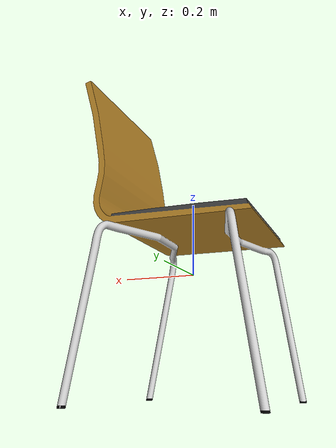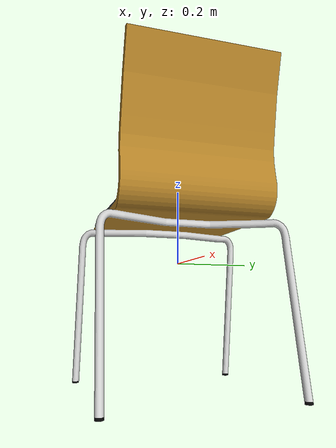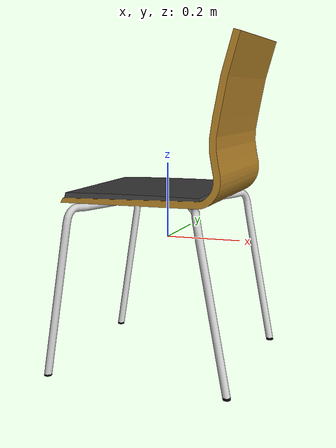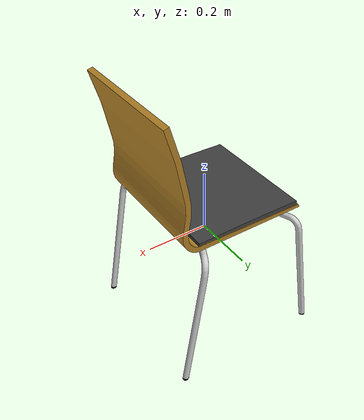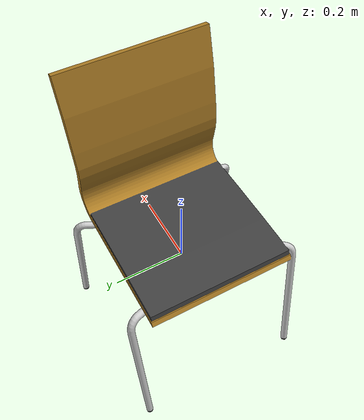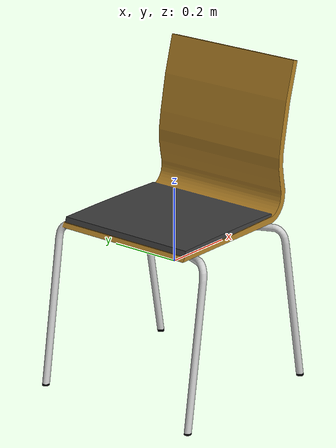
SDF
<?xml version='1.0'?>
<sdf version='1.5'>
    <model name="413_simple_chair">
        <pose>0 0 0 0 0 0</pose>
        <static>false</static>
        <link name='model_body'>
            <visual name="visual">
                <geometry>
                    <mesh>
                        <uri>model://rs_gazebo/meshes/ss_hq4/413_simple_chair/413_simple_chair_visual.dae</uri>
                        <scale>1 1 1</scale>
                    </mesh>
                </geometry>
            </visual>

            <collision name="collision">
                <geometry>
                    <!--TODO SUICIDE-->
                    <mesh>
                        <uri>model://rs_gazebo/meshes/ss_hq4/413_simple_chair/413_simple_chair_collision.stl</uri>
                        <scale>1 1 1</scale>
                    </mesh>
                </geometry>
            </collision>

            <inertial>
                <pose> 0 0 0 0 0 0</pose>
                <inertia>
                    <ixx>0.28</ixx>
                    <ixy>0</ixy>
                    <ixz>0</ixz>
                    <iyy>0.2555</iyy>
                    <iyz>0</iyz>
                    <izz>0.0875</izz>
                </inertia>
                <mass>7.0</mass>
            </inertial>
        </link>
    </model>
</sdf>
